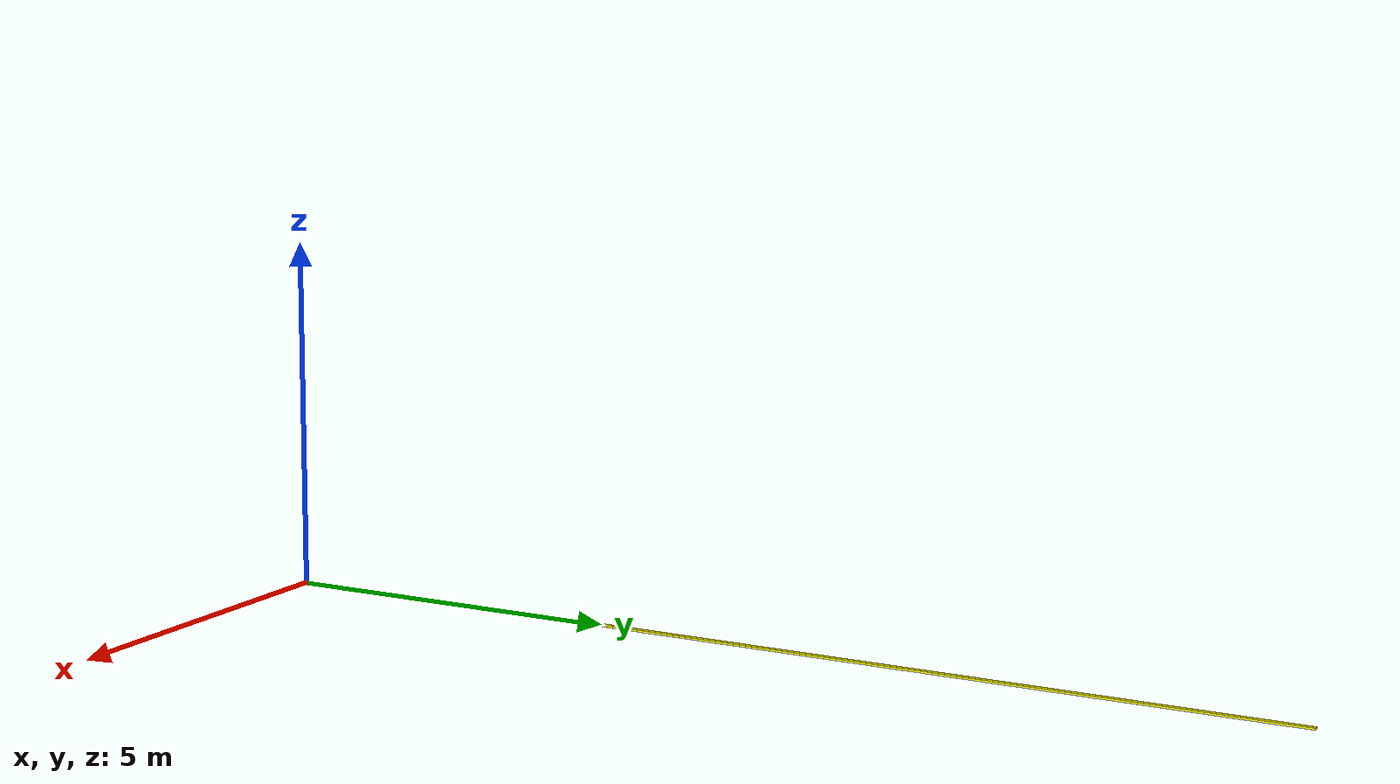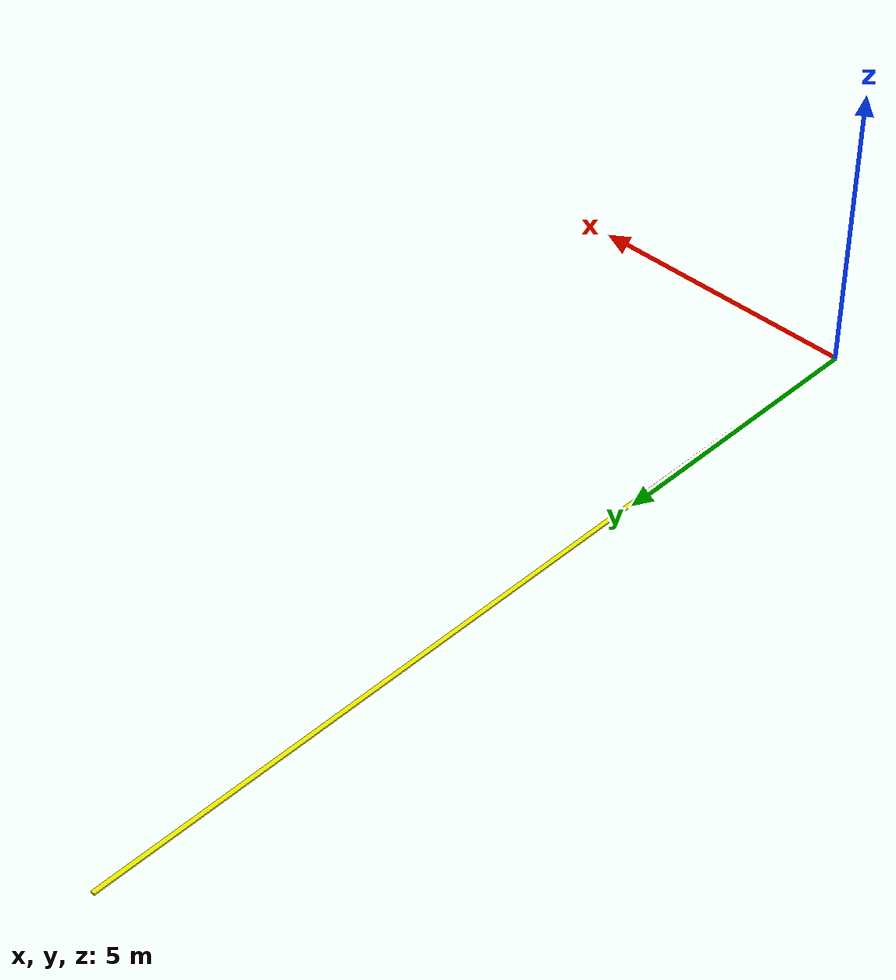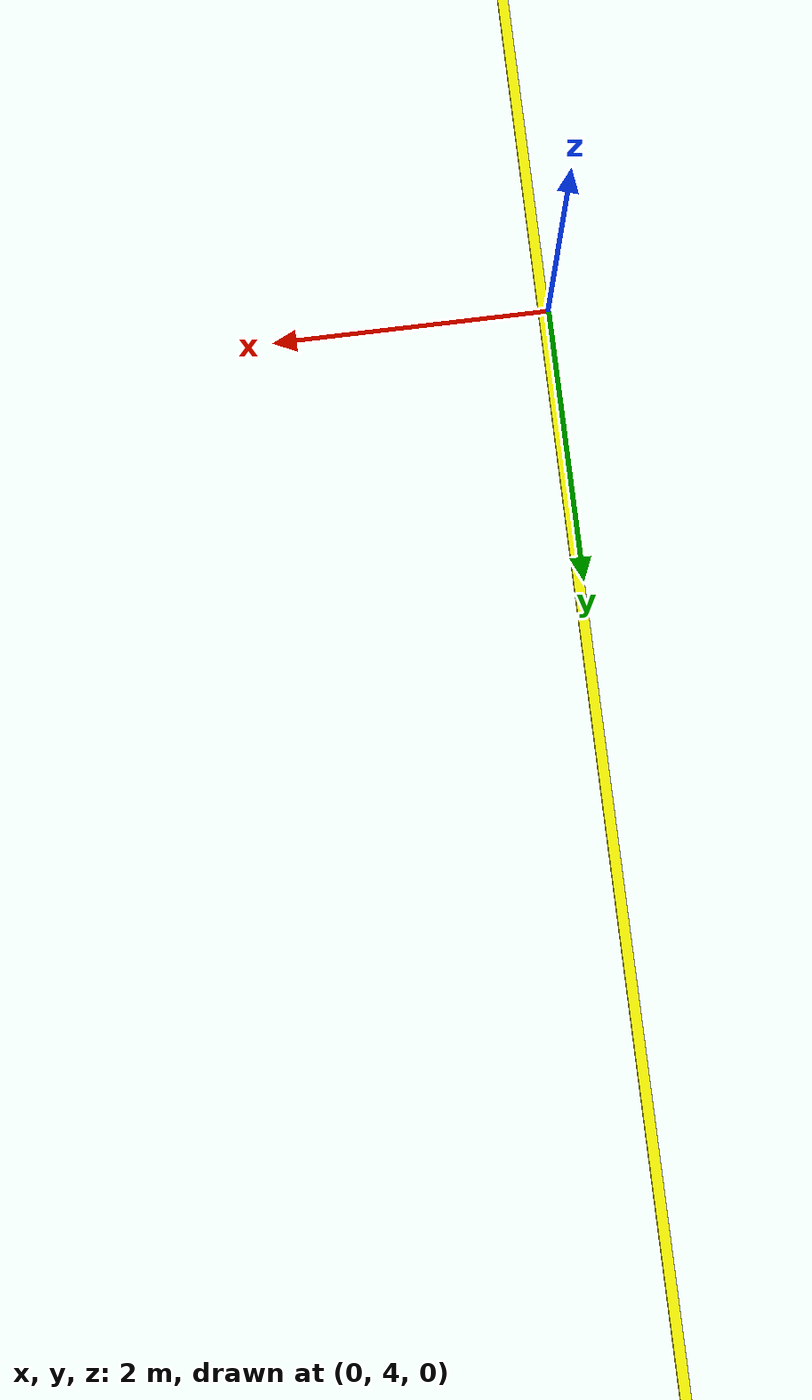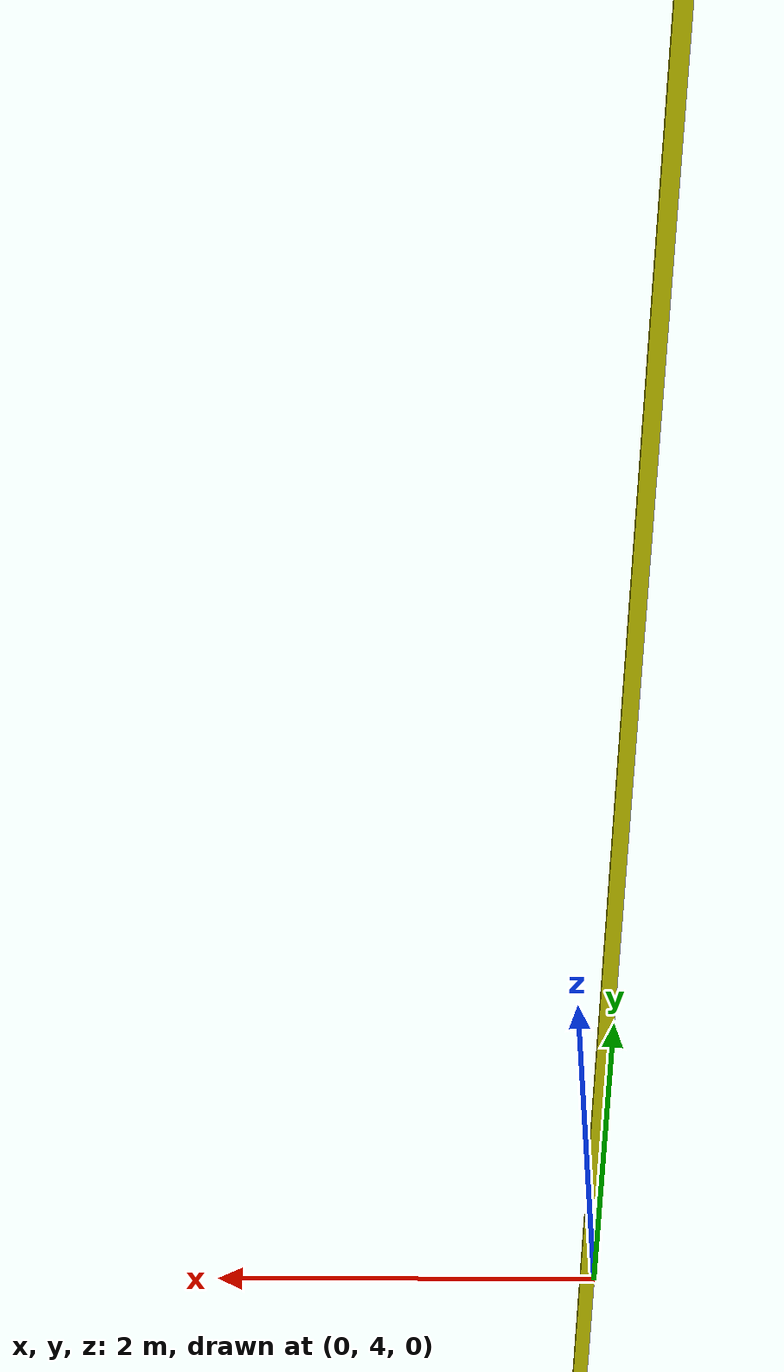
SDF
<?xml version="1.0" ?>
<sdf version="1.5">
  <model name="yellow_stripe_solid">
    <static>true</static>
    <link name="yellow_stripe_solid_link">
        <collision name="yellow_stripe_solid_collision">
         <geometry>
            <mesh>
                <uri>model://yellow_stripe_solid/meshes/model.dae</uri>
                <scale>0.5 0.5 0.5</scale>
            </mesh>
        </geometry>
      </collision>

      <visual name="yellow_stripe_solid_mesh">
        <cast_shadows>false</cast_shadows>
        <geometry>
            <mesh>
                <uri>model://yellow_stripe_solid/meshes/model.dae</uri>
                <scale>0.5 0.5 0.5</scale>
            </mesh>
        </geometry>
      </visual>
    </link>
  </model>
</sdf>
